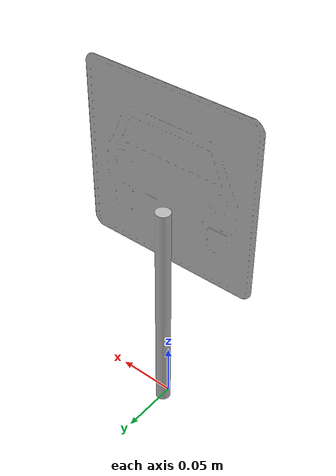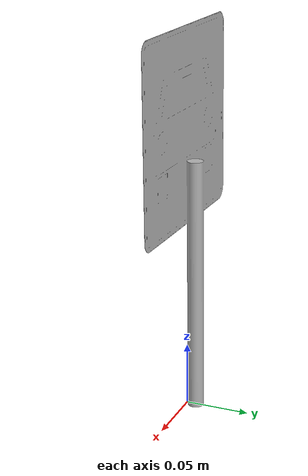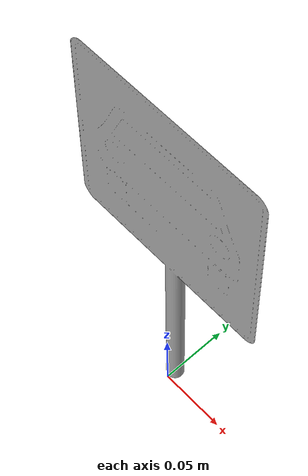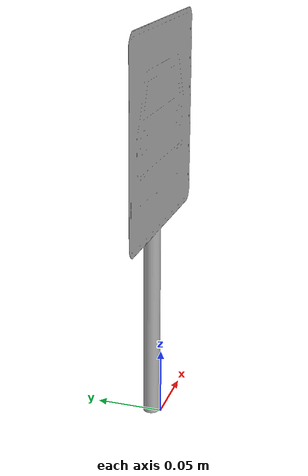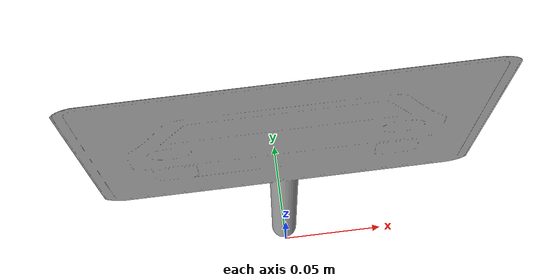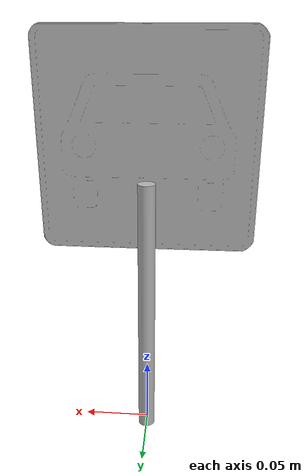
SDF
<?xml version="1.0"?>
<sdf version="1.5">
    <model name="Expressway_beginning">
      <pose>0 0 0  0 0 0</pose>
      <static>true</static>
      <link name="body">
        <visual name="visual">
          <geometry>
            <mesh>
	      <uri>model://meshes/Expressway_beginning.dae</uri>
	      <scale>1 1 1</scale>
	    </mesh>
          </geometry>
        </visual>
      </link>
    </model>
</sdf>
